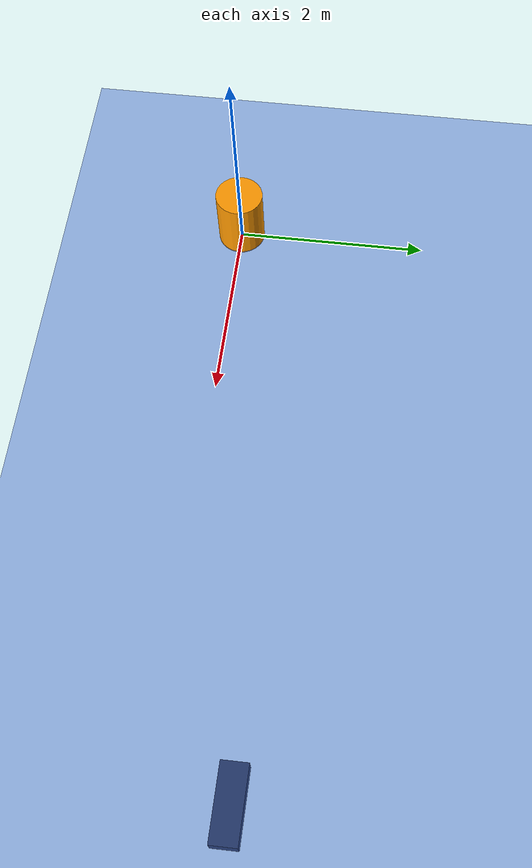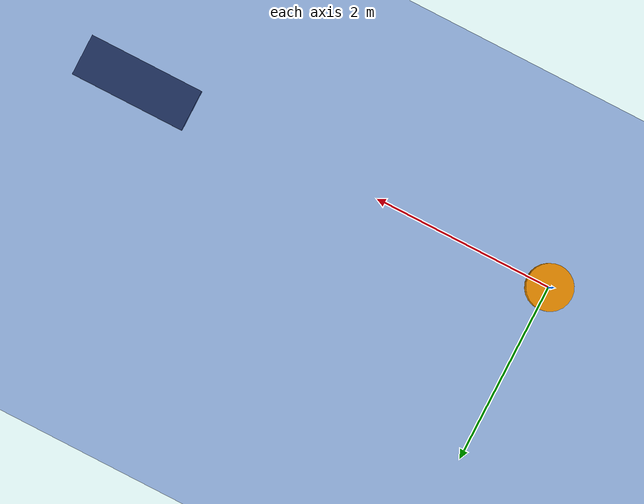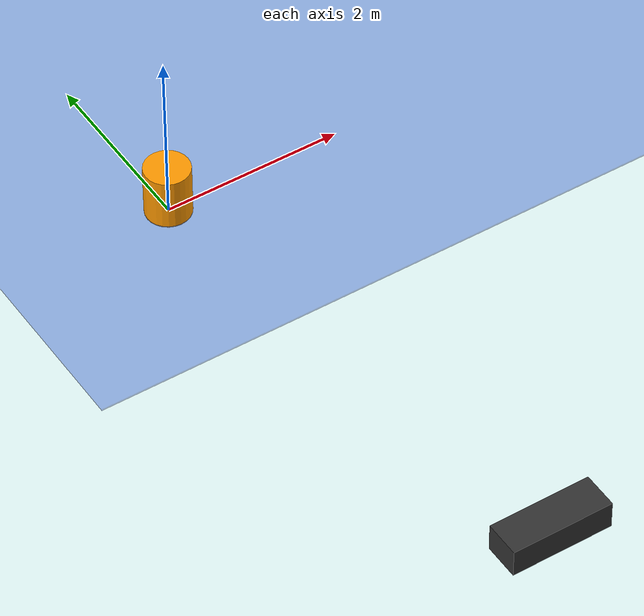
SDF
<?xml version="1.0" ?>
<sdf version="1.9">
  <world name="ocean_world">

    <!-- Core world systems -->
    <plugin
      filename="gz-sim-physics-system"
      name="gz::sim::systems::Physics"/>

    <plugin
      filename="gz-sim-scene-broadcaster-system"
      name="gz::sim::systems::SceneBroadcaster"/>

    <plugin
      filename="gz-sim-user-commands-system"
      name="gz::sim::systems::UserCommands"/>

    <!-- Gravity -->
    <gravity>0 0 -9.81</gravity>

    <!-- Water surface visual -->
    <model name="water_surface">
      <static>true</static>
      <pose>0 0 0 0 0 0</pose>
      <link name="link">
        <visual name="visual">
          <geometry>
            <box>
              <size>200 200 0.02</size>
            </box>
          </geometry>
          <material>
            <ambient>0.1 0.3 0.8 0.4</ambient>
            <diffuse>0.1 0.3 0.8 0.4</diffuse>
          </material>
        </visual>
      </link>
    </model>

    <!-- Buoy -->
    <model name="buoy">
      <static>true</static>
      <pose>0 0 0.3 0 0 0</pose>

      <link name="base_link">
        <inertial>
          <mass>10.0</mass>
          <inertia>
            <ixx>1.0</ixx><iyy>1.0</iyy><izz>1.0</izz>
            <ixy>0.0</ixy><ixz>0.0</ixz><iyz>0.0</iyz>
          </inertia>
        </inertial>

        <collision name="collision">
          <geometry>
            <cylinder>
              <radius>0.25</radius>
              <length>0.6</length>
            </cylinder>
          </geometry>
        </collision>

        <visual name="visual">
          <geometry>
            <cylinder>
              <radius>0.25</radius>
              <length>0.6</length>
            </cylinder>
          </geometry>
          <material>
            <ambient>1 0.6 0 1</ambient>
            <diffuse>1 0.6 0 1</diffuse>
          </material>
        </visual>
      </link>

      <plugin
        filename="gz-sim-odometry-publisher-system"
        name="gz::sim::systems::OdometryPublisher">
        <dimensions>3</dimensions>
        <odom_publish_frequency>30</odom_publish_frequency>
        <odom_topic>/model/buoy/odometry</odom_topic>
        <odom_frame>world</odom_frame>
        <robot_base_frame>buoy/base_link</robot_base_frame>
      </plugin>
    </model>

    <!-- Submarine -->
    <model name="submarine">
      <static>true</static>
      <pose>5 0 -8 0 0 0</pose>

      <link name="base_link">
        <inertial>
          <mass>25.0</mass>
          <inertia>
            <ixx>2.0</ixx><iyy>2.0</iyy><izz>2.0</izz>
            <ixy>0.0</ixy><ixz>0.0</ixz><iyz>0.0</iyz>
          </inertia>
        </inertial>

        <collision name="collision">
          <geometry>
            <box>
              <size>1.4 0.5 0.4</size>
            </box>
          </geometry>
        </collision>

        <visual name="visual">
          <geometry>
            <box>
              <size>1.4 0.5 0.4</size>
            </box>
          </geometry>
          <material>
            <ambient>0.2 0.2 0.2 1</ambient>
            <diffuse>0.2 0.2 0.2 1</diffuse>
          </material>
        </visual>
      </link>

      <plugin
        filename="gz-sim-odometry-publisher-system"
        name="gz::sim::systems::OdometryPublisher">
        <dimensions>3</dimensions>
        <odom_publish_frequency>30</odom_publish_frequency>
        <odom_topic>/model/submarine/odometry</odom_topic>
        <odom_frame>world</odom_frame>
        <robot_base_frame>submarine/base_link</robot_base_frame>
      </plugin>
    </model>

    <!-- Sun -->
    <light name="sun" type="directional">
      <cast_shadows>true</cast_shadows>
      <pose>0 0 20 0 0 0</pose>
      <diffuse>1 1 1 1</diffuse>
      <specular>0.2 0.2 0.2 1</specular>
      <direction>-0.5 0.1 -1</direction>
    </light>

  </world>
</sdf>
